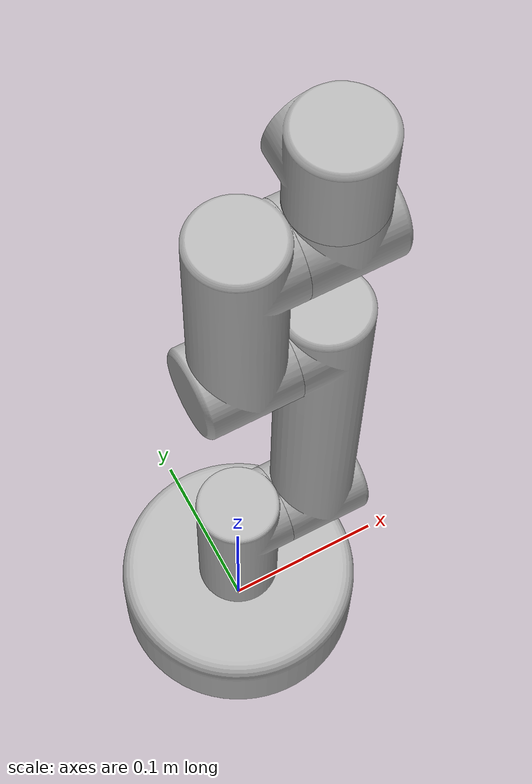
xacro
<?xml version="1.0" ?>
<robot name="roboarm" xmlns:xacro="http://www.ros.org/wiki/xacro">

<xacro:include filename="$(find roboarm_description)/urdf/materials.xacro" />
<xacro:include filename="$(find roboarm_description)/urdf/roboarm.trans" />
<xacro:include filename="$(find roboarm_description)/urdf/roboarm.gazebo" />
<link name="base_link">
  <inertial>
    <origin xyz="0.0 0.0 0.024744670366615526" rpy="0 0 0"/>
    <mass value="6.859025781710776"/>
    <inertia ixx="0.010954" iyy="0.010954" izz="0.019099" ixy="0.0" iyz="-0.0" ixz="-0.0"/>
  </inertial>
  <visual>
    <origin xyz="0 0 0" rpy="0 0 0"/>
    <geometry>
      <mesh filename="package://roboarm_description/meshes/base_link.stl" scale="0.001 0.001 0.001"/>
    </geometry>
    <material name="silver"/>
  </visual>
  <collision>
    <origin xyz="0 0 0" rpy="0 0 0"/>
    <geometry>
      <mesh filename="package://roboarm_description/meshes/base_link.stl" scale="0.001 0.001 0.001"/>
    </geometry>
  </collision>
</link>

<link name="hip_link_1">
  <inertial>
    <origin xyz="0.000732680814491997 0.0 0.05226125919305334" rpy="0 0 0"/>
    <mass value="1.6435191077374383"/>
    <inertia ixx="0.001701" iyy="0.001707" izz="0.000539" ixy="-0.0" iyz="0.0" ixz="-2.7e-05"/>
  </inertial>
  <visual>
    <origin xyz="-0.0 -0.0 -0.05" rpy="0 0 0"/>
    <geometry>
      <mesh filename="package://roboarm_description/meshes/hip_link_1.stl" scale="0.001 0.001 0.001"/>
    </geometry>
    <material name="silver"/>
  </visual>
  <collision>
    <origin xyz="-0.0 -0.0 -0.05" rpy="0 0 0"/>
    <geometry>
      <mesh filename="package://roboarm_description/meshes/hip_link_1.stl" scale="0.001 0.001 0.001"/>
    </geometry>
  </collision>
</link>

<link name="upper_arm_1">
  <inertial>
    <origin xyz="0.024979729959586992 -5.282376160782392e-17 0.10057369013012912" rpy="0 0 0"/>
    <mass value="4.054728322032271"/>
    <inertia ixx="0.022746" iyy="0.022802" izz="0.001362" ixy="-0.0" iyz="0.0" ixz="0.000233"/>
  </inertial>
  <visual>
    <origin xyz="-0.025 -0.0 -0.125" rpy="0 0 0"/>
    <geometry>
      <mesh filename="package://roboarm_description/meshes/upper_arm_1.stl" scale="0.001 0.001 0.001"/>
    </geometry>
    <material name="silver"/>
  </visual>
  <collision>
    <origin xyz="-0.025 -0.0 -0.125" rpy="0 0 0"/>
    <geometry>
      <mesh filename="package://roboarm_description/meshes/upper_arm_1.stl" scale="0.001 0.001 0.001"/>
    </geometry>
  </collision>
</link>

<link name="lower_arm_1">
  <inertial>
    <origin xyz="-0.024967298867867006 -6.746437862827368e-17 0.050925508038468015" rpy="0 0 0"/>
    <mass value="2.5133844246321675"/>
    <inertia ixx="0.005267" iyy="0.005324" izz="0.000881" ixy="-0.0" iyz="-0.0" ixz="-0.000116"/>
  </inertial>
  <visual>
    <origin xyz="-0.025 0.0 -0.325" rpy="0 0 0"/>
    <geometry>
      <mesh filename="package://roboarm_description/meshes/lower_arm_1.stl" scale="0.001 0.001 0.001"/>
    </geometry>
    <material name="silver"/>
  </visual>
  <collision>
    <origin xyz="-0.025 0.0 -0.325" rpy="0 0 0"/>
    <geometry>
      <mesh filename="package://roboarm_description/meshes/lower_arm_1.stl" scale="0.001 0.001 0.001"/>
    </geometry>
  </collision>
</link>

<link name="wrist_1_1">
  <inertial>
    <origin xyz="0.026287627807457192 -9.166576269252855e-16 0.0013819551909817762" rpy="0 0 0"/>
    <mass value="0.8713561930443053"/>
    <inertia ixx="0.000296" iyy="0.000345" izz="0.00034" ixy="0.0" iyz="-0.0" ixz="2e-06"/>
  </inertial>
  <visual>
    <origin xyz="-0.025 -0.0 -0.425" rpy="0 0 0"/>
    <geometry>
      <mesh filename="package://roboarm_description/meshes/wrist_1_1.stl" scale="0.001 0.001 0.001"/>
    </geometry>
    <material name="silver"/>
  </visual>
  <collision>
    <origin xyz="-0.025 -0.0 -0.425" rpy="0 0 0"/>
    <geometry>
      <mesh filename="package://roboarm_description/meshes/wrist_1_1.stl" scale="0.001 0.001 0.001"/>
    </geometry>
  </collision>
</link>

<link name="wrist_2_1">
  <inertial>
    <origin xyz="1.457167719820518e-16 0.0013819551909810752 0.026287627807458025" rpy="0 0 0"/>
    <mass value="0.8713561930443205"/>
    <inertia ixx="0.000345" iyy="0.00034" izz="0.000296" ixy="0.0" iyz="2e-06" ixz="0.0"/>
  </inertial>
  <visual>
    <origin xyz="-0.05 -0.0 -0.45" rpy="0 0 0"/>
    <geometry>
      <mesh filename="package://roboarm_description/meshes/wrist_2_1.stl" scale="0.001 0.001 0.001"/>
    </geometry>
    <material name="silver"/>
  </visual>
  <collision>
    <origin xyz="-0.05 -0.0 -0.45" rpy="0 0 0"/>
    <geometry>
      <mesh filename="package://roboarm_description/meshes/wrist_2_1.stl" scale="0.001 0.001 0.001"/>
    </geometry>
  </collision>
</link>

<joint name="Revolute 1" type="continuous">
  <origin xyz="0.0 0.0 0.05" rpy="0 0 0"/>
  <parent link="base_link"/>
  <child link="hip_link_1"/>
  <axis xyz="0.0 0.0 1.0"/>
</joint>

<joint name="Revolute 2" type="continuous">
  <origin xyz="0.025 0.0 0.075" rpy="0 0 0"/>
  <parent link="hip_link_1"/>
  <child link="upper_arm_1"/>
  <axis xyz="1.0 0.0 0.0"/>
</joint>

<joint name="Revolute 3" type="continuous">
  <origin xyz="0.0 -0.0 0.2" rpy="0 0 0"/>
  <parent link="upper_arm_1"/>
  <child link="lower_arm_1"/>
  <axis xyz="-1.0 0.0 0.0"/>
</joint>

<joint name="Revolute 4" type="continuous">
  <origin xyz="0.0 0.0 0.1" rpy="0 0 0"/>
  <parent link="lower_arm_1"/>
  <child link="wrist_1_1"/>
  <axis xyz="1.0 0.0 0.0"/>
</joint>

<joint name="Revolute 5" type="continuous">
  <origin xyz="0.025 0.0 0.025" rpy="0 0 0"/>
  <parent link="wrist_1_1"/>
  <child link="wrist_2_1"/>
  <axis xyz="0.0 0.0 1.0"/>
</joint>

</robot>

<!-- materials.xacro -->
<robot name="roboarm" xmlns:xacro="http://www.ros.org/wiki/xacro" >

<material name="silver">
  <color rgba="0.700 0.700 0.700 1.000"/>
</material>

</robot>

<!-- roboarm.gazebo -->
<robot name="roboarm" xmlns:xacro="http://www.ros.org/wiki/xacro" >

<xacro:property name="body_color" value="Gazebo/Silver" />

<gazebo>
  <plugin name="control" filename="libgazebo_ros_control.so"/>
</gazebo>
<gazebo reference="base_link">
  <material>${body_color}</material>
  <mu1>0.2</mu1>
  <mu2>0.2</mu2>
  <selfCollide>true</selfCollide>
  <gravity>true</gravity>
</gazebo>

<gazebo reference="hip_link_1">
  <material>${body_color}</material>
  <mu1>0.2</mu1>
  <mu2>0.2</mu2>
  <selfCollide>true</selfCollide>
</gazebo>

<gazebo reference="upper_arm_1">
  <material>${body_color}</material>
  <mu1>0.2</mu1>
  <mu2>0.2</mu2>
  <selfCollide>true</selfCollide>
</gazebo>

<gazebo reference="lower_arm_1">
  <material>${body_color}</material>
  <mu1>0.2</mu1>
  <mu2>0.2</mu2>
  <selfCollide>true</selfCollide>
</gazebo>

<gazebo reference="wrist_1_1">
  <material>${body_color}</material>
  <mu1>0.2</mu1>
  <mu2>0.2</mu2>
  <selfCollide>true</selfCollide>
</gazebo>

<gazebo reference="wrist_2_1">
  <material>${body_color}</material>
  <mu1>0.2</mu1>
  <mu2>0.2</mu2>
  <selfCollide>true</selfCollide>
</gazebo>

</robot>
